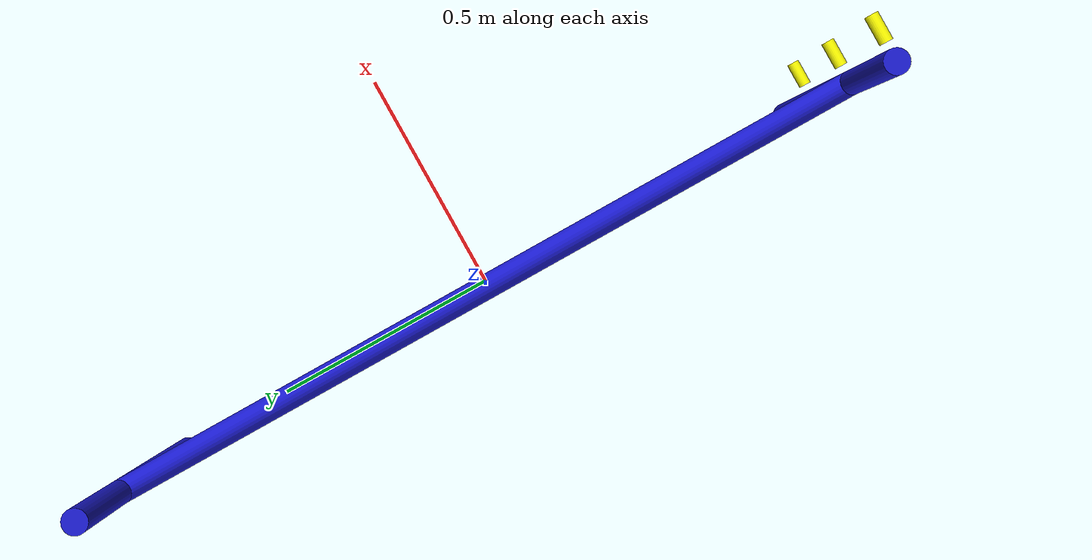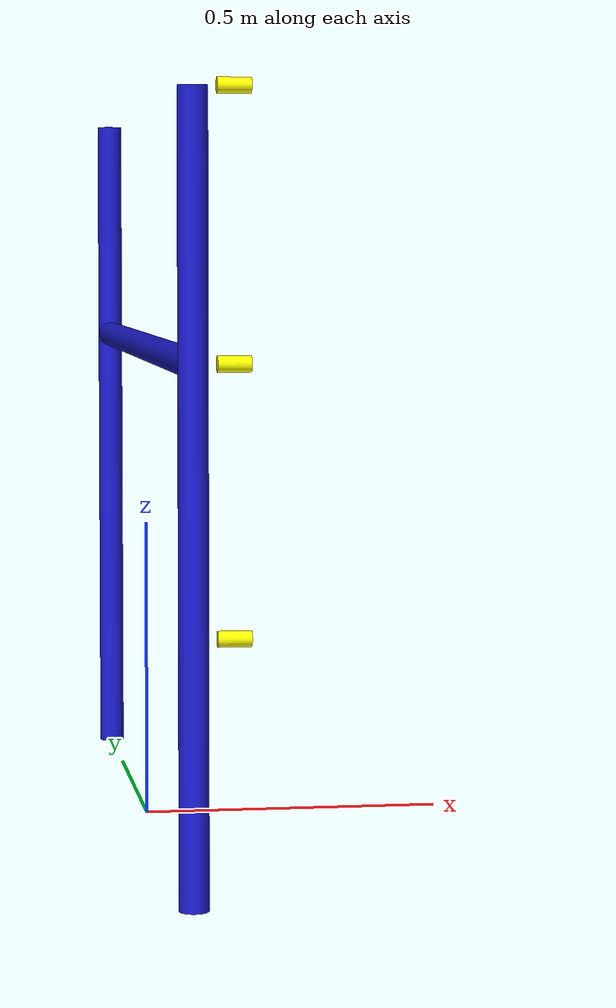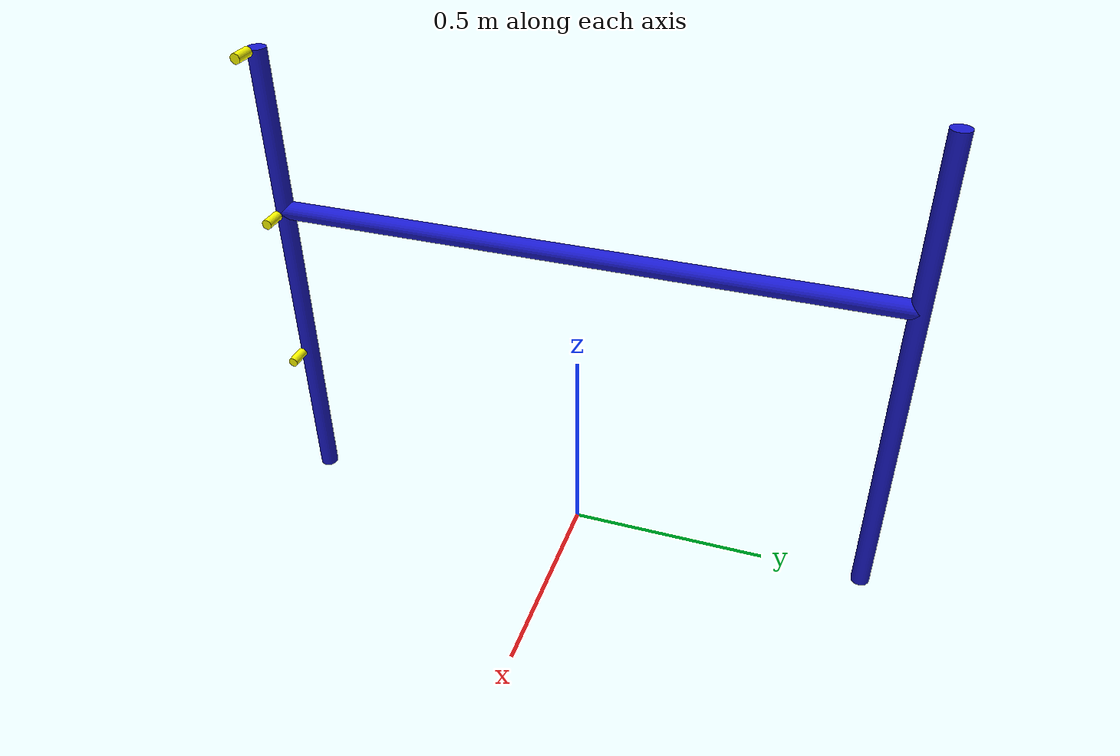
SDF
<?xml version="1.0" ?>
<!-- Blue bar obstacle per rulebook Fig.10a.
     Two posts 1200mm tall, 1500mm apart. ONE horizontal bar (drone flies under).
     Bar default at 800mm (middle step). Marks at 400/800/1200mm. -->
<sdf version="1.9">
  <model name="blue_bar">
    <static>true</static>

    <!-- Left post -->
    <link name="post_left">
      <pose>0 -0.75 0.6 0 0 0</pose>
      <collision name="col"><geometry><cylinder><radius>0.0225</radius><length>1.2</length></cylinder></geometry></collision>
      <visual name="vis">
        <geometry><cylinder><radius>0.0225</radius><length>1.2</length></cylinder></geometry>
        <material><ambient>0.1 0.1 0.8 1</ambient><diffuse>0.1 0.1 0.8 1</diffuse></material>
      </visual>
    </link>

    <!-- Right post -->
    <link name="post_right">
      <pose>0 0.75 0.6 0 0 0</pose>
      <collision name="col"><geometry><cylinder><radius>0.0225</radius><length>1.2</length></cylinder></geometry></collision>
      <visual name="vis">
        <geometry><cylinder><radius>0.0225</radius><length>1.2</length></cylinder></geometry>
        <material><ambient>0.1 0.1 0.8 1</ambient><diffuse>0.1 0.1 0.8 1</diffuse></material>
      </visual>
    </link>

    <!-- Horizontal bar at 800mm (middle/default height). -->
    <link name="bar">
      <pose>0 0 0.8 1.5708 0 0</pose>
      <collision name="col"><geometry><cylinder><radius>0.0225</radius><length>1.5</length></cylinder></geometry></collision>
      <visual name="vis">
        <geometry><cylinder><radius>0.0225</radius><length>1.5</length></cylinder></geometry>
        <material><ambient>0.1 0.1 0.8 1</ambient><diffuse>0.1 0.1 0.8 1</diffuse></material>
      </visual>
    </link>

    <!-- Height indicator pegs (visual only): low=0.4m, mid=0.8m, high=1.2m -->
    <link name="peg_low">
      <pose>0.06 -0.75 0.4 0 1.5708 0</pose>
      <visual name="vis">
        <geometry><cylinder><radius>0.012</radius><length>0.05</length></cylinder></geometry>
        <material><ambient>1 1 0 1</ambient><diffuse>1 1 0 1</diffuse></material>
      </visual>
    </link>
    <link name="peg_mid">
      <pose>0.06 -0.75 0.8 0 1.5708 0</pose>
      <visual name="vis">
        <geometry><cylinder><radius>0.012</radius><length>0.05</length></cylinder></geometry>
        <material><ambient>1 1 0 1</ambient><diffuse>1 1 0 1</diffuse></material>
      </visual>
    </link>
    <link name="peg_high">
      <pose>0.06 -0.75 1.2 0 1.5708 0</pose>
      <visual name="vis">
        <geometry><cylinder><radius>0.012</radius><length>0.05</length></cylinder></geometry>
        <material><ambient>1 1 0 1</ambient><diffuse>1 1 0 1</diffuse></material>
      </visual>
    </link>

  </model>
</sdf>
